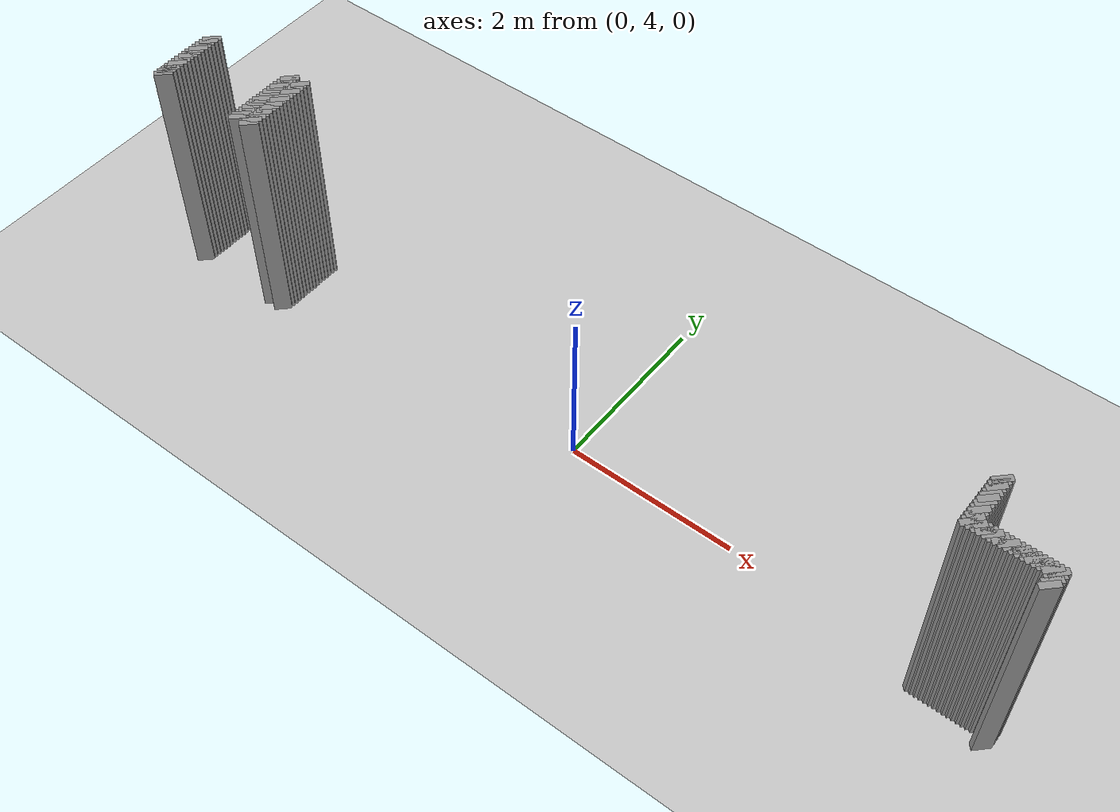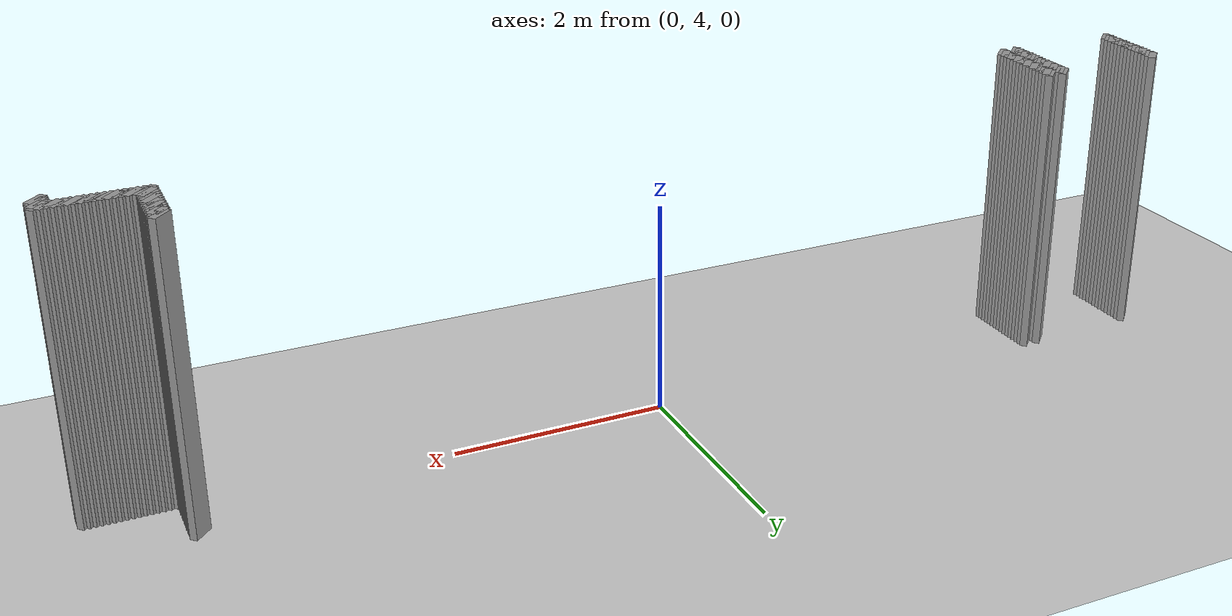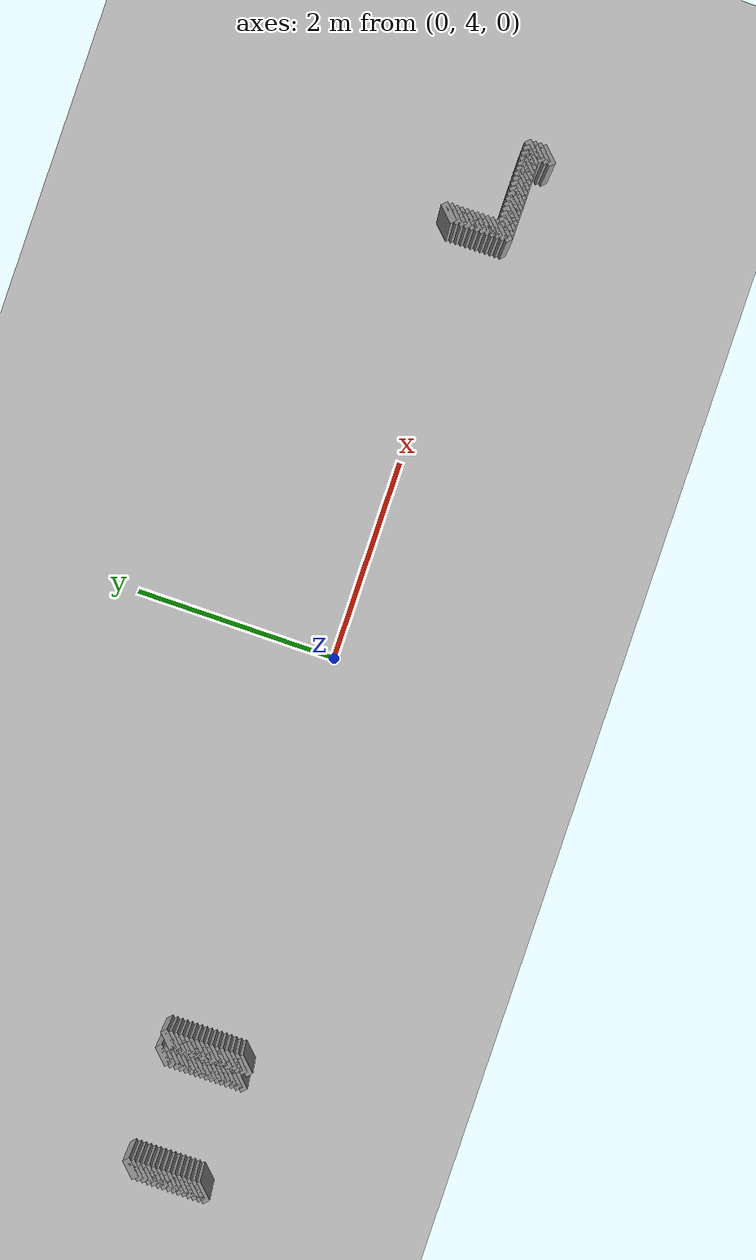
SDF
<sdf version="1.5">
 <world name="default">
  <include><uri>model://ground_plane</uri></include>
  <include><uri>model://sun</uri></include>
  <model name="grey_wall_237">
   <static>1</static>
   <link name="link">
    <pose>-4.025 4.325  1.4 0 0 -0.785398163397</pose>
    <collision name="collision"><geometry><box><size>0.0707106781187 .2  2.8</size></box></geometry></collision>
    <visual name="visual">
     <cast_shadows>0</cast_shadows>
     <geometry><box><size>0.0707106781187 .2  2.8</size></box></geometry>
     <material>
      <script>
       <uri>model://grey_wall/materials/scripts</uri>
       <uri>model://grey_wall/materials/textures</uri>
       <name>vrc/grey_wall</name>
      </script>
     </material>
    </visual>
   </link>
  </model>
  <model name="grey_wall_238">
   <static>1</static>
   <link name="link">
    <pose>-3.875 4.325  1.4 0 0 -0.785398163397</pose>
    <collision name="collision"><geometry><box><size>0.0707106781187 .2  2.8</size></box></geometry></collision>
    <visual name="visual">
     <cast_shadows>0</cast_shadows>
     <geometry><box><size>0.0707106781187 .2  2.8</size></box></geometry>
     <material>
      <script>
       <uri>model://grey_wall/materials/scripts</uri>
       <uri>model://grey_wall/materials/textures</uri>
       <name>vrc/grey_wall</name>
      </script>
     </material>
    </visual>
   </link>
  </model>
  <model name="grey_wall_239">
   <static>1</static>
   <link name="link">
    <pose>4.275 4.325  1.4 0 0 -0.785398163397</pose>
    <collision name="collision"><geometry><box><size>0.0707106781187 .2  2.8</size></box></geometry></collision>
    <visual name="visual">
     <cast_shadows>0</cast_shadows>
     <geometry><box><size>0.0707106781187 .2  2.8</size></box></geometry>
     <material>
      <script>
       <uri>model://grey_wall/materials/scripts</uri>
       <uri>model://grey_wall/materials/textures</uri>
       <name>vrc/grey_wall</name>
      </script>
     </material>
    </visual>
   </link>
  </model>
  <model name="grey_wall_240">
   <static>1</static>
   <link name="link">
    <pose>-5.125 4.275  1.4 0 0 -0.785398163397</pose>
    <collision name="collision"><geometry><box><size>0.0707106781187 .2  2.8</size></box></geometry></collision>
    <visual name="visual">
     <cast_shadows>0</cast_shadows>
     <geometry><box><size>0.0707106781187 .2  2.8</size></box></geometry>
     <material>
      <script>
       <uri>model://grey_wall/materials/scripts</uri>
       <uri>model://grey_wall/materials/textures</uri>
       <name>vrc/grey_wall</name>
      </script>
     </material>
    </visual>
   </link>
  </model>
  <model name="grey_wall_241">
   <static>1</static>
   <link name="link">
    <pose>-4.025 4.275  1.4 0 0 -0.785398163397</pose>
    <collision name="collision"><geometry><box><size>0.0707106781187 .2  2.8</size></box></geometry></collision>
    <visual name="visual">
     <cast_shadows>0</cast_shadows>
     <geometry><box><size>0.0707106781187 .2  2.8</size></box></geometry>
     <material>
      <script>
       <uri>model://grey_wall/materials/scripts</uri>
       <uri>model://grey_wall/materials/textures</uri>
       <name>vrc/grey_wall</name>
      </script>
     </material>
    </visual>
   </link>
  </model>
  <model name="grey_wall_242">
   <static>1</static>
   <link name="link">
    <pose>-3.875 4.275  1.4 0 0 -0.785398163397</pose>
    <collision name="collision"><geometry><box><size>0.0707106781187 .2  2.8</size></box></geometry></collision>
    <visual name="visual">
     <cast_shadows>0</cast_shadows>
     <geometry><box><size>0.0707106781187 .2  2.8</size></box></geometry>
     <material>
      <script>
       <uri>model://grey_wall/materials/scripts</uri>
       <uri>model://grey_wall/materials/textures</uri>
       <name>vrc/grey_wall</name>
      </script>
     </material>
    </visual>
   </link>
  </model>
  <model name="grey_wall_243">
   <static>1</static>
   <link name="link">
    <pose>4.275 4.275  1.4 0 0 -0.785398163397</pose>
    <collision name="collision"><geometry><box><size>0.0707106781187 .2  2.8</size></box></geometry></collision>
    <visual name="visual">
     <cast_shadows>0</cast_shadows>
     <geometry><box><size>0.0707106781187 .2  2.8</size></box></geometry>
     <material>
      <script>
       <uri>model://grey_wall/materials/scripts</uri>
       <uri>model://grey_wall/materials/textures</uri>
       <name>vrc/grey_wall</name>
      </script>
     </material>
    </visual>
   </link>
  </model>
  <model name="grey_wall_244">
   <static>1</static>
   <link name="link">
    <pose>-5.125 4.225  1.4 0 0 -0.785398163397</pose>
    <collision name="collision"><geometry><box><size>0.0707106781187 .2  2.8</size></box></geometry></collision>
    <visual name="visual">
     <cast_shadows>0</cast_shadows>
     <geometry><box><size>0.0707106781187 .2  2.8</size></box></geometry>
     <material>
      <script>
       <uri>model://grey_wall/materials/scripts</uri>
       <uri>model://grey_wall/materials/textures</uri>
       <name>vrc/grey_wall</name>
      </script>
     </material>
    </visual>
   </link>
  </model>
  <model name="grey_wall_245">
   <static>1</static>
   <link name="link">
    <pose>-4.025 4.225  1.4 0 0 -0.785398163397</pose>
    <collision name="collision"><geometry><box><size>0.0707106781187 .2  2.8</size></box></geometry></collision>
    <visual name="visual">
     <cast_shadows>0</cast_shadows>
     <geometry><box><size>0.0707106781187 .2  2.8</size></box></geometry>
     <material>
      <script>
       <uri>model://grey_wall/materials/scripts</uri>
       <uri>model://grey_wall/materials/textures</uri>
       <name>vrc/grey_wall</name>
      </script>
     </material>
    </visual>
   </link>
  </model>
  <model name="grey_wall_246">
   <static>1</static>
   <link name="link">
    <pose>-3.875 4.225  1.4 0 0 -0.785398163397</pose>
    <collision name="collision"><geometry><box><size>0.0707106781187 .2  2.8</size></box></geometry></collision>
    <visual name="visual">
     <cast_shadows>0</cast_shadows>
     <geometry><box><size>0.0707106781187 .2  2.8</size></box></geometry>
     <material>
      <script>
       <uri>model://grey_wall/materials/scripts</uri>
       <uri>model://grey_wall/materials/textures</uri>
       <name>vrc/grey_wall</name>
      </script>
     </material>
    </visual>
   </link>
  </model>
  <model name="grey_wall_247">
   <static>1</static>
   <link name="link">
    <pose>4.275 4.225  1.4 0 0 -0.785398163397</pose>
    <collision name="collision"><geometry><box><size>0.0707106781187 .2  2.8</size></box></geometry></collision>
    <visual name="visual">
     <cast_shadows>0</cast_shadows>
     <geometry><box><size>0.0707106781187 .2  2.8</size></box></geometry>
     <material>
      <script>
       <uri>model://grey_wall/materials/scripts</uri>
       <uri>model://grey_wall/materials/textures</uri>
       <name>vrc/grey_wall</name>
      </script>
     </material>
    </visual>
   </link>
  </model>
  <model name="grey_wall_248">
   <static>1</static>
   <link name="link">
    <pose>-5.125 4.175  1.4 0 0 -0.785398163397</pose>
    <collision name="collision"><geometry><box><size>0.0707106781187 .2  2.8</size></box></geometry></collision>
    <visual name="visual">
     <cast_shadows>0</cast_shadows>
     <geometry><box><size>0.0707106781187 .2  2.8</size></box></geometry>
     <material>
      <script>
       <uri>model://grey_wall/materials/scripts</uri>
       <uri>model://grey_wall/materials/textures</uri>
       <name>vrc/grey_wall</name>
      </script>
     </material>
    </visual>
   </link>
  </model>
  <model name="grey_wall_249">
   <static>1</static>
   <link name="link">
    <pose>-4.025 4.175  1.4 0 0 -0.785398163397</pose>
    <collision name="collision"><geometry><box><size>0.0707106781187 .2  2.8</size></box></geometry></collision>
    <visual name="visual">
     <cast_shadows>0</cast_shadows>
     <geometry><box><size>0.0707106781187 .2  2.8</size></box></geometry>
     <material>
      <script>
       <uri>model://grey_wall/materials/scripts</uri>
       <uri>model://grey_wall/materials/textures</uri>
       <name>vrc/grey_wall</name>
      </script>
     </material>
    </visual>
   </link>
  </model>
  <model name="grey_wall_250">
   <static>1</static>
   <link name="link">
    <pose>-3.875 4.175  1.4 0 0 -0.785398163397</pose>
    <collision name="collision"><geometry><box><size>0.0707106781187 .2  2.8</size></box></geometry></collision>
    <visual name="visual">
     <cast_shadows>0</cast_shadows>
     <geometry><box><size>0.0707106781187 .2  2.8</size></box></geometry>
     <material>
      <script>
       <uri>model://grey_wall/materials/scripts</uri>
       <uri>model://grey_wall/materials/textures</uri>
       <name>vrc/grey_wall</name>
      </script>
     </material>
    </visual>
   </link>
  </model>
  <model name="grey_wall_251">
   <static>1</static>
   <link name="link">
    <pose>4.275 4.175  1.4 0 0 -0.785398163397</pose>
    <collision name="collision"><geometry><box><size>0.0707106781187 .2  2.8</size></box></geometry></collision>
    <visual name="visual">
     <cast_shadows>0</cast_shadows>
     <geometry><box><size>0.0707106781187 .2  2.8</size></box></geometry>
     <material>
      <script>
       <uri>model://grey_wall/materials/scripts</uri>
       <uri>model://grey_wall/materials/textures</uri>
       <name>vrc/grey_wall</name>
      </script>
     </material>
    </visual>
   </link>
  </model>
  <model name="grey_wall_252">
   <static>1</static>
   <link name="link">
    <pose>-5.125 4.125  1.4 0 0 -0.785398163397</pose>
    <collision name="collision"><geometry><box><size>0.0707106781187 .2  2.8</size></box></geometry></collision>
    <visual name="visual">
     <cast_shadows>0</cast_shadows>
     <geometry><box><size>0.0707106781187 .2  2.8</size></box></geometry>
     <material>
      <script>
       <uri>model://grey_wall/materials/scripts</uri>
       <uri>model://grey_wall/materials/textures</uri>
       <name>vrc/grey_wall</name>
      </script>
     </material>
    </visual>
   </link>
  </model>
  <model name="grey_wall_253">
   <static>1</static>
   <link name="link">
    <pose>-4.025 4.125  1.4 0 0 -0.785398163397</pose>
    <collision name="collision"><geometry><box><size>0.0707106781187 .2  2.8</size></box></geometry></collision>
    <visual name="visual">
     <cast_shadows>0</cast_shadows>
     <geometry><box><size>0.0707106781187 .2  2.8</size></box></geometry>
     <material>
      <script>
       <uri>model://grey_wall/materials/scripts</uri>
       <uri>model://grey_wall/materials/textures</uri>
       <name>vrc/grey_wall</name>
      </script>
     </material>
    </visual>
   </link>
  </model>
  <model name="grey_wall_254">
   <static>1</static>
   <link name="link">
    <pose>-3.875 4.125  1.4 0 0 -0.785398163397</pose>
    <collision name="collision"><geometry><box><size>0.0707106781187 .2  2.8</size></box></geometry></collision>
    <visual name="visual">
     <cast_shadows>0</cast_shadows>
     <geometry><box><size>0.0707106781187 .2  2.8</size></box></geometry>
     <material>
      <script>
       <uri>model://grey_wall/materials/scripts</uri>
       <uri>model://grey_wall/materials/textures</uri>
       <name>vrc/grey_wall</name>
      </script>
     </material>
    </visual>
   </link>
  </model>
  <model name="grey_wall_255">
   <static>1</static>
   <link name="link">
    <pose>4.275 4.125  1.4 0 0 -0.785398163397</pose>
    <collision name="collision"><geometry><box><size>0.0707106781187 .2  2.8</size></box></geometry></collision>
    <visual name="visual">
     <cast_shadows>0</cast_shadows>
     <geometry><box><size>0.0707106781187 .2  2.8</size></box></geometry>
     <material>
      <script>
       <uri>model://grey_wall/materials/scripts</uri>
       <uri>model://grey_wall/materials/textures</uri>
       <name>vrc/grey_wall</name>
      </script>
     </material>
    </visual>
   </link>
  </model>
  <model name="grey_wall_256">
   <static>1</static>
   <link name="link">
    <pose>-5.125 4.075  1.4 0 0 -0.785398163397</pose>
    <collision name="collision"><geometry><box><size>0.0707106781187 .2  2.8</size></box></geometry></collision>
    <visual name="visual">
     <cast_shadows>0</cast_shadows>
     <geometry><box><size>0.0707106781187 .2  2.8</size></box></geometry>
     <material>
      <script>
       <uri>model://grey_wall/materials/scripts</uri>
       <uri>model://grey_wall/materials/textures</uri>
       <name>vrc/grey_wall</name>
      </script>
     </material>
    </visual>
   </link>
  </model>
  <model name="grey_wall_257">
   <static>1</static>
   <link name="link">
    <pose>-4.025 4.075  1.4 0 0 -0.785398163397</pose>
    <collision name="collision"><geometry><box><size>0.0707106781187 .2  2.8</size></box></geometry></collision>
    <visual name="visual">
     <cast_shadows>0</cast_shadows>
     <geometry><box><size>0.0707106781187 .2  2.8</size></box></geometry>
     <material>
      <script>
       <uri>model://grey_wall/materials/scripts</uri>
       <uri>model://grey_wall/materials/textures</uri>
       <name>vrc/grey_wall</name>
      </script>
     </material>
    </visual>
   </link>
  </model>
  <model name="grey_wall_258">
   <static>1</static>
   <link name="link">
    <pose>-3.875 4.075  1.4 0 0 -0.785398163397</pose>
    <collision name="collision"><geometry><box><size>0.0707106781187 .2  2.8</size></box></geometry></collision>
    <visual name="visual">
     <cast_shadows>0</cast_shadows>
     <geometry><box><size>0.0707106781187 .2  2.8</size></box></geometry>
     <material>
      <script>
       <uri>model://grey_wall/materials/scripts</uri>
       <uri>model://grey_wall/materials/textures</uri>
       <name>vrc/grey_wall</name>
      </script>
     </material>
    </visual>
   </link>
  </model>
  <model name="grey_wall_259">
   <static>1</static>
   <link name="link">
    <pose>4.275 4.075  1.4 0 0 -0.785398163397</pose>
    <collision name="collision"><geometry><box><size>0.0707106781187 .2  2.8</size></box></geometry></collision>
    <visual name="visual">
     <cast_shadows>0</cast_shadows>
     <geometry><box><size>0.0707106781187 .2  2.8</size></box></geometry>
     <material>
      <script>
       <uri>model://grey_wall/materials/scripts</uri>
       <uri>model://grey_wall/materials/textures</uri>
       <name>vrc/grey_wall</name>
      </script>
     </material>
    </visual>
   </link>
  </model>
  <model name="grey_wall_260">
   <static>1</static>
   <link name="link">
    <pose>-5.125 4.025  1.4 0 0 -0.785398163397</pose>
    <collision name="collision"><geometry><box><size>0.0707106781187 .2  2.8</size></box></geometry></collision>
    <visual name="visual">
     <cast_shadows>0</cast_shadows>
     <geometry><box><size>0.0707106781187 .2  2.8</size></box></geometry>
     <material>
      <script>
       <uri>model://grey_wall/materials/scripts</uri>
       <uri>model://grey_wall/materials/textures</uri>
       <name>vrc/grey_wall</name>
      </script>
     </material>
    </visual>
   </link>
  </model>
  <model name="grey_wall_261">
   <static>1</static>
   <link name="link">
    <pose>-4.025 4.025  1.4 0 0 -0.785398163397</pose>
    <collision name="collision"><geometry><box><size>0.0707106781187 .2  2.8</size></box></geometry></collision>
    <visual name="visual">
     <cast_shadows>0</cast_shadows>
     <geometry><box><size>0.0707106781187 .2  2.8</size></box></geometry>
     <material>
      <script>
       <uri>model://grey_wall/materials/scripts</uri>
       <uri>model://grey_wall/materials/textures</uri>
       <name>vrc/grey_wall</name>
      </script>
     </material>
    </visual>
   </link>
  </model>
  <model name="grey_wall_262">
   <static>1</static>
   <link name="link">
    <pose>-3.875 4.025  1.4 0 0 -0.785398163397</pose>
    <collision name="collision"><geometry><box><size>0.0707106781187 .2  2.8</size></box></geometry></collision>
    <visual name="visual">
     <cast_shadows>0</cast_shadows>
     <geometry><box><size>0.0707106781187 .2  2.8</size></box></geometry>
     <material>
      <script>
       <uri>model://grey_wall/materials/scripts</uri>
       <uri>model://grey_wall/materials/textures</uri>
       <name>vrc/grey_wall</name>
      </script>
     </material>
    </visual>
   </link>
  </model>
  <model name="grey_wall_263">
   <static>1</static>
   <link name="link">
    <pose>4.275 4.025  1.4 0 0 -0.785398163397</pose>
    <collision name="collision"><geometry><box><size>0.0707106781187 .2  2.8</size></box></geometry></collision>
    <visual name="visual">
     <cast_shadows>0</cast_shadows>
     <geometry><box><size>0.0707106781187 .2  2.8</size></box></geometry>
     <material>
      <script>
       <uri>model://grey_wall/materials/scripts</uri>
       <uri>model://grey_wall/materials/textures</uri>
       <name>vrc/grey_wall</name>
      </script>
     </material>
    </visual>
   </link>
  </model>
  <model name="grey_wall_264">
   <static>1</static>
   <link name="link">
    <pose>-5.125 3.975  1.4 0 0 -0.785398163397</pose>
    <collision name="collision"><geometry><box><size>0.0707106781187 .2  2.8</size></box></geometry></collision>
    <visual name="visual">
     <cast_shadows>0</cast_shadows>
     <geometry><box><size>0.0707106781187 .2  2.8</size></box></geometry>
     <material>
      <script>
       <uri>model://grey_wall/materials/scripts</uri>
       <uri>model://grey_wall/materials/textures</uri>
       <name>vrc/grey_wall</name>
      </script>
     </material>
    </visual>
   </link>
  </model>
  <model name="grey_wall_265">
   <static>1</static>
   <link name="link">
    <pose>-4.025 3.975  1.4 0 0 -0.785398163397</pose>
    <collision name="collision"><geometry><box><size>0.0707106781187 .2  2.8</size></box></geometry></collision>
    <visual name="visual">
     <cast_shadows>0</cast_shadows>
     <geometry><box><size>0.0707106781187 .2  2.8</size></box></geometry>
     <material>
      <script>
       <uri>model://grey_wall/materials/scripts</uri>
       <uri>model://grey_wall/materials/textures</uri>
       <name>vrc/grey_wall</name>
      </script>
     </material>
    </visual>
   </link>
  </model>
  <model name="grey_wall_266">
   <static>1</static>
   <link name="link">
    <pose>-3.875 3.975  1.4 0 0 -0.785398163397</pose>
    <collision name="collision"><geometry><box><size>0.0707106781187 .2  2.8</size></box></geometry></collision>
    <visual name="visual">
     <cast_shadows>0</cast_shadows>
     <geometry><box><size>0.0707106781187 .2  2.8</size></box></geometry>
     <material>
      <script>
       <uri>model://grey_wall/materials/scripts</uri>
       <uri>model://grey_wall/materials/textures</uri>
       <name>vrc/grey_wall</name>
      </script>
     </material>
    </visual>
   </link>
  </model>
  <model name="grey_wall_267">
   <static>1</static>
   <link name="link">
    <pose>4.275 3.975  1.4 0 0 -0.785398163397</pose>
    <collision name="collision"><geometry><box><size>0.0707106781187 .2  2.8</size></box></geometry></collision>
    <visual name="visual">
     <cast_shadows>0</cast_shadows>
     <geometry><box><size>0.0707106781187 .2  2.8</size></box></geometry>
     <material>
      <script>
       <uri>model://grey_wall/materials/scripts</uri>
       <uri>model://grey_wall/materials/textures</uri>
       <name>vrc/grey_wall</name>
      </script>
     </material>
    </visual>
   </link>
  </model>
  <model name="grey_wall_268">
   <static>1</static>
   <link name="link">
    <pose>-5.125 3.925  1.4 0 0 -0.785398163397</pose>
    <collision name="collision"><geometry><box><size>0.0707106781187 .2  2.8</size></box></geometry></collision>
    <visual name="visual">
     <cast_shadows>0</cast_shadows>
     <geometry><box><size>0.0707106781187 .2  2.8</size></box></geometry>
     <material>
      <script>
       <uri>model://grey_wall/materials/scripts</uri>
       <uri>model://grey_wall/materials/textures</uri>
       <name>vrc/grey_wall</name>
      </script>
     </material>
    </visual>
   </link>
  </model>
  <model name="grey_wall_269">
   <static>1</static>
   <link name="link">
    <pose>-4.025 3.925  1.4 0 0 -0.785398163397</pose>
    <collision name="collision"><geometry><box><size>0.0707106781187 .2  2.8</size></box></geometry></collision>
    <visual name="visual">
     <cast_shadows>0</cast_shadows>
     <geometry><box><size>0.0707106781187 .2  2.8</size></box></geometry>
     <material>
      <script>
       <uri>model://grey_wall/materials/scripts</uri>
       <uri>model://grey_wall/materials/textures</uri>
       <name>vrc/grey_wall</name>
      </script>
     </material>
    </visual>
   </link>
  </model>
  <model name="grey_wall_270">
   <static>1</static>
   <link name="link">
    <pose>-3.875 3.925  1.4 0 0 -0.785398163397</pose>
    <collision name="collision"><geometry><box><size>0.0707106781187 .2  2.8</size></box></geometry></collision>
    <visual name="visual">
     <cast_shadows>0</cast_shadows>
     <geometry><box><size>0.0707106781187 .2  2.8</size></box></geometry>
     <material>
      <script>
       <uri>model://grey_wall/materials/scripts</uri>
       <uri>model://grey_wall/materials/textures</uri>
       <name>vrc/grey_wall</name>
      </script>
     </material>
    </visual>
   </link>
  </model>
  <model name="grey_wall_271">
   <static>1</static>
   <link name="link">
    <pose>4.275 3.925  1.4 0 0 -0.785398163397</pose>
    <collision name="collision"><geometry><box><size>0.0707106781187 .2  2.8</size></box></geometry></collision>
    <visual name="visual">
     <cast_shadows>0</cast_shadows>
     <geometry><box><size>0.0707106781187 .2  2.8</size></box></geometry>
     <material>
      <script>
       <uri>model://grey_wall/materials/scripts</uri>
       <uri>model://grey_wall/materials/textures</uri>
       <name>vrc/grey_wall</name>
      </script>
     </material>
    </visual>
   </link>
  </model>
  <model name="grey_wall_272">
   <static>1</static>
   <link name="link">
    <pose>-5.125 3.875  1.4 0 0 -0.785398163397</pose>
    <collision name="collision"><geometry><box><size>0.0707106781187 .2  2.8</size></box></geometry></collision>
    <visual name="visual">
     <cast_shadows>0</cast_shadows>
     <geometry><box><size>0.0707106781187 .2  2.8</size></box></geometry>
     <material>
      <script>
       <uri>model://grey_wall/materials/scripts</uri>
       <uri>model://grey_wall/materials/textures</uri>
       <name>vrc/grey_wall</name>
      </script>
     </material>
    </visual>
   </link>
  </model>
  <model name="grey_wall_273">
   <static>1</static>
   <link name="link">
    <pose>-4.025 3.875  1.4 0 0 -0.785398163397</pose>
    <collision name="collision"><geometry><box><size>0.0707106781187 .2  2.8</size></box></geometry></collision>
    <visual name="visual">
     <cast_shadows>0</cast_shadows>
     <geometry><box><size>0.0707106781187 .2  2.8</size></box></geometry>
     <material>
      <script>
       <uri>model://grey_wall/materials/scripts</uri>
       <uri>model://grey_wall/materials/textures</uri>
       <name>vrc/grey_wall</name>
      </script>
     </material>
    </visual>
   </link>
  </model>
  <model name="grey_wall_274">
   <static>1</static>
   <link name="link">
    <pose>-3.875 3.875  1.4 0 0 -0.785398163397</pose>
    <collision name="collision"><geometry><box><size>0.0707106781187 .2  2.8</size></box></geometry></collision>
    <visual name="visual">
     <cast_shadows>0</cast_shadows>
     <geometry><box><size>0.0707106781187 .2  2.8</size></box></geometry>
     <material>
      <script>
       <uri>model://grey_wall/materials/scripts</uri>
       <uri>model://grey_wall/materials/textures</uri>
       <name>vrc/grey_wall</name>
      </script>
     </material>
    </visual>
   </link>
  </model>
  <model name="grey_wall_275">
   <static>1</static>
   <link name="link">
    <pose>4.275 3.875  1.4 0 0 -0.785398163397</pose>
    <collision name="collision"><geometry><box><size>0.0707106781187 .2  2.8</size></box></geometry></collision>
    <visual name="visual">
     <cast_shadows>0</cast_shadows>
     <geometry><box><size>0.0707106781187 .2  2.8</size></box></geometry>
     <material>
      <script>
       <uri>model://grey_wall/materials/scripts</uri>
       <uri>model://grey_wall/materials/textures</uri>
       <name>vrc/grey_wall</name>
      </script>
     </material>
    </visual>
   </link>
  </model>
  <model name="grey_wall_276">
   <static>1</static>
   <link name="link">
    <pose>-5.125 3.825  1.4 0 0 -0.785398163397</pose>
    <collision name="collision"><geometry><box><size>0.0707106781187 .2  2.8</size></box></geometry></collision>
    <visual name="visual">
     <cast_shadows>0</cast_shadows>
     <geometry><box><size>0.0707106781187 .2  2.8</size></box></geometry>
     <material>
      <script>
       <uri>model://grey_wall/materials/scripts</uri>
       <uri>model://grey_wall/materials/textures</uri>
       <name>vrc/grey_wall</name>
      </script>
     </material>
    </visual>
   </link>
  </model>
  <model name="grey_wall_277">
   <static>1</static>
   <link name="link">
    <pose>-4.025 3.825  1.4 0 0 -0.785398163397</pose>
    <collision name="collision"><geometry><box><size>0.0707106781187 .2  2.8</size></box></geometry></collision>
    <visual name="visual">
     <cast_shadows>0</cast_shadows>
     <geometry><box><size>0.0707106781187 .2  2.8</size></box></geometry>
     <material>
      <script>
       <uri>model://grey_wall/materials/scripts</uri>
       <uri>model://grey_wall/materials/textures</uri>
       <name>vrc/grey_wall</name>
      </script>
     </material>
    </visual>
   </link>
  </model>
  <model name="grey_wall_278">
   <static>1</static>
   <link name="link">
    <pose>-3.875 3.825  1.4 0 0 -0.785398163397</pose>
    <collision name="collision"><geometry><box><size>0.0707106781187 .2  2.8</size></box></geometry></collision>
    <visual name="visual">
     <cast_shadows>0</cast_shadows>
     <geometry><box><size>0.0707106781187 .2  2.8</size></box></geometry>
     <material>
      <script>
       <uri>model://grey_wall/materials/scripts</uri>
       <uri>model://grey_wall/materials/textures</uri>
       <name>vrc/grey_wall</name>
      </script>
     </material>
    </visual>
   </link>
  </model>
  <model name="grey_wall_279">
   <static>1</static>
   <link name="link">
    <pose>4.275 3.825  1.4 0 0 -0.785398163397</pose>
    <collision name="collision"><geometry><box><size>0.0707106781187 .2  2.8</size></box></geometry></collision>
    <visual name="visual">
     <cast_shadows>0</cast_shadows>
     <geometry><box><size>0.0707106781187 .2  2.8</size></box></geometry>
     <material>
      <script>
       <uri>model://grey_wall/materials/scripts</uri>
       <uri>model://grey_wall/materials/textures</uri>
       <name>vrc/grey_wall</name>
      </script>
     </material>
    </visual>
   </link>
  </model>
  <model name="grey_wall_280">
   <static>1</static>
   <link name="link">
    <pose>-5.125 3.775  1.4 0 0 -0.785398163397</pose>
    <collision name="collision"><geometry><box><size>0.0707106781187 .2  2.8</size></box></geometry></collision>
    <visual name="visual">
     <cast_shadows>0</cast_shadows>
     <geometry><box><size>0.0707106781187 .2  2.8</size></box></geometry>
     <material>
      <script>
       <uri>model://grey_wall/materials/scripts</uri>
       <uri>model://grey_wall/materials/textures</uri>
       <name>vrc/grey_wall</name>
      </script>
     </material>
    </visual>
   </link>
  </model>
  <model name="grey_wall_281">
   <static>1</static>
   <link name="link">
    <pose>-4.025 3.775  1.4 0 0 -0.785398163397</pose>
    <collision name="collision"><geometry><box><size>0.0707106781187 .2  2.8</size></box></geometry></collision>
    <visual name="visual">
     <cast_shadows>0</cast_shadows>
     <geometry><box><size>0.0707106781187 .2  2.8</size></box></geometry>
     <material>
      <script>
       <uri>model://grey_wall/materials/scripts</uri>
       <uri>model://grey_wall/materials/textures</uri>
       <name>vrc/grey_wall</name>
      </script>
     </material>
    </visual>
   </link>
  </model>
  <model name="grey_wall_282">
   <static>1</static>
   <link name="link">
    <pose>-3.875 3.775  1.4 0 0 -0.785398163397</pose>
    <collision name="collision"><geometry><box><size>0.0707106781187 .2  2.8</size></box></geometry></collision>
    <visual name="visual">
     <cast_shadows>0</cast_shadows>
     <geometry><box><size>0.0707106781187 .2  2.8</size></box></geometry>
     <material>
      <script>
       <uri>model://grey_wall/materials/scripts</uri>
       <uri>model://grey_wall/materials/textures</uri>
       <name>vrc/grey_wall</name>
      </script>
     </material>
    </visual>
   </link>
  </model>
  <model name="grey_wall_283">
   <static>1</static>
   <link name="link">
    <pose>4.275 3.775  1.4 0 0 -0.785398163397</pose>
    <collision name="collision"><geometry><box><size>0.0707106781187 .2  2.8</size></box></geometry></collision>
    <visual name="visual">
     <cast_shadows>0</cast_shadows>
     <geometry><box><size>0.0707106781187 .2  2.8</size></box></geometry>
     <material>
      <script>
       <uri>model://grey_wall/materials/scripts</uri>
       <uri>model://grey_wall/materials/textures</uri>
       <name>vrc/grey_wall</name>
      </script>
     </material>
    </visual>
   </link>
  </model>
  <model name="grey_wall_284">
   <static>1</static>
   <link name="link">
    <pose>4.325 3.775  1.4 0 0 -0.785398163397</pose>
    <collision name="collision"><geometry><box><size>0.0707106781187 .2  2.8</size></box></geometry></collision>
    <visual name="visual">
     <cast_shadows>0</cast_shadows>
     <geometry><box><size>0.0707106781187 .2  2.8</size></box></geometry>
     <material>
      <script>
       <uri>model://grey_wall/materials/scripts</uri>
       <uri>model://grey_wall/materials/textures</uri>
       <name>vrc/grey_wall</name>
      </script>
     </material>
    </visual>
   </link>
  </model>
  <model name="grey_wall_285">
   <static>1</static>
   <link name="link">
    <pose>4.375 3.775  1.4 0 0 -0.785398163397</pose>
    <collision name="collision"><geometry><box><size>0.0707106781187 .2  2.8</size></box></geometry></collision>
    <visual name="visual">
     <cast_shadows>0</cast_shadows>
     <geometry><box><size>0.0707106781187 .2  2.8</size></box></geometry>
     <material>
      <script>
       <uri>model://grey_wall/materials/scripts</uri>
       <uri>model://grey_wall/materials/textures</uri>
       <name>vrc/grey_wall</name>
      </script>
     </material>
    </visual>
   </link>
  </model>
  <model name="grey_wall_286">
   <static>1</static>
   <link name="link">
    <pose>4.425 3.775  1.4 0 0 -0.785398163397</pose>
    <collision name="collision"><geometry><box><size>0.0707106781187 .2  2.8</size></box></geometry></collision>
    <visual name="visual">
     <cast_shadows>0</cast_shadows>
     <geometry><box><size>0.0707106781187 .2  2.8</size></box></geometry>
     <material>
      <script>
       <uri>model://grey_wall/materials/scripts</uri>
       <uri>model://grey_wall/materials/textures</uri>
       <name>vrc/grey_wall</name>
      </script>
     </material>
    </visual>
   </link>
  </model>
  <model name="grey_wall_287">
   <static>1</static>
   <link name="link">
    <pose>4.475 3.775  1.4 0 0 -0.785398163397</pose>
    <collision name="collision"><geometry><box><size>0.0707106781187 .2  2.8</size></box></geometry></collision>
    <visual name="visual">
     <cast_shadows>0</cast_shadows>
     <geometry><box><size>0.0707106781187 .2  2.8</size></box></geometry>
     <material>
      <script>
       <uri>model://grey_wall/materials/scripts</uri>
       <uri>model://grey_wall/materials/textures</uri>
       <name>vrc/grey_wall</name>
      </script>
     </material>
    </visual>
   </link>
  </model>
  <model name="grey_wall_288">
   <static>1</static>
   <link name="link">
    <pose>4.525 3.775  1.4 0 0 -0.785398163397</pose>
    <collision name="collision"><geometry><box><size>0.0707106781187 .2  2.8</size></box></geometry></collision>
    <visual name="visual">
     <cast_shadows>0</cast_shadows>
     <geometry><box><size>0.0707106781187 .2  2.8</size></box></geometry>
     <material>
      <script>
       <uri>model://grey_wall/materials/scripts</uri>
       <uri>model://grey_wall/materials/textures</uri>
       <name>vrc/grey_wall</name>
      </script>
     </material>
    </visual>
   </link>
  </model>
  <model name="grey_wall_289">
   <static>1</static>
   <link name="link">
    <pose>4.575 3.775  1.4 0 0 -0.785398163397</pose>
    <collision name="collision"><geometry><box><size>0.0707106781187 .2  2.8</size></box></geometry></collision>
    <visual name="visual">
     <cast_shadows>0</cast_shadows>
     <geometry><box><size>0.0707106781187 .2  2.8</size></box></geometry>
     <material>
      <script>
       <uri>model://grey_wall/materials/scripts</uri>
       <uri>model://grey_wall/materials/textures</uri>
       <name>vrc/grey_wall</name>
      </script>
     </material>
    </visual>
   </link>
  </model>
  <model name="grey_wall_290">
   <static>1</static>
   <link name="link">
    <pose>4.625 3.775  1.4 0 0 -0.785398163397</pose>
    <collision name="collision"><geometry><box><size>0.0707106781187 .2  2.8</size></box></geometry></collision>
    <visual name="visual">
     <cast_shadows>0</cast_shadows>
     <geometry><box><size>0.0707106781187 .2  2.8</size></box></geometry>
     <material>
      <script>
       <uri>model://grey_wall/materials/scripts</uri>
       <uri>model://grey_wall/materials/textures</uri>
       <name>vrc/grey_wall</name>
      </script>
     </material>
    </visual>
   </link>
  </model>
  <model name="grey_wall_291">
   <static>1</static>
   <link name="link">
    <pose>4.675 3.775  1.4 0 0 -0.785398163397</pose>
    <collision name="collision"><geometry><box><size>0.0707106781187 .2  2.8</size></box></geometry></collision>
    <visual name="visual">
     <cast_shadows>0</cast_shadows>
     <geometry><box><size>0.0707106781187 .2  2.8</size></box></geometry>
     <material>
      <script>
       <uri>model://grey_wall/materials/scripts</uri>
       <uri>model://grey_wall/materials/textures</uri>
       <name>vrc/grey_wall</name>
      </script>
     </material>
    </visual>
   </link>
  </model>
  <model name="grey_wall_292">
   <static>1</static>
   <link name="link">
    <pose>4.725 3.775  1.4 0 0 -0.785398163397</pose>
    <collision name="collision"><geometry><box><size>0.0707106781187 .2  2.8</size></box></geometry></collision>
    <visual name="visual">
     <cast_shadows>0</cast_shadows>
     <geometry><box><size>0.0707106781187 .2  2.8</size></box></geometry>
     <material>
      <script>
       <uri>model://grey_wall/materials/scripts</uri>
       <uri>model://grey_wall/materials/textures</uri>
       <name>vrc/grey_wall</name>
      </script>
     </material>
    </visual>
   </link>
  </model>
  <model name="grey_wall_293">
   <static>1</static>
   <link name="link">
    <pose>4.775 3.775  1.4 0 0 -0.785398163397</pose>
    <collision name="collision"><geometry><box><size>0.0707106781187 .2  2.8</size></box></geometry></collision>
    <visual name="visual">
     <cast_shadows>0</cast_shadows>
     <geometry><box><size>0.0707106781187 .2  2.8</size></box></geometry>
     <material>
      <script>
       <uri>model://grey_wall/materials/scripts</uri>
       <uri>model://grey_wall/materials/textures</uri>
       <name>vrc/grey_wall</name>
      </script>
     </material>
    </visual>
   </link>
  </model>
  <model name="grey_wall_294">
   <static>1</static>
   <link name="link">
    <pose>4.825 3.775  1.4 0 0 -0.785398163397</pose>
    <collision name="collision"><geometry><box><size>0.0707106781187 .2  2.8</size></box></geometry></collision>
    <visual name="visual">
     <cast_shadows>0</cast_shadows>
     <geometry><box><size>0.0707106781187 .2  2.8</size></box></geometry>
     <material>
      <script>
       <uri>model://grey_wall/materials/scripts</uri>
       <uri>model://grey_wall/materials/textures</uri>
       <name>vrc/grey_wall</name>
      </script>
     </material>
    </visual>
   </link>
  </model>
  <model name="grey_wall_295">
   <static>1</static>
   <link name="link">
    <pose>4.875 3.775  1.4 0 0 -0.785398163397</pose>
    <collision name="collision"><geometry><box><size>0.0707106781187 .2  2.8</size></box></geometry></collision>
    <visual name="visual">
     <cast_shadows>0</cast_shadows>
     <geometry><box><size>0.0707106781187 .2  2.8</size></box></geometry>
     <material>
      <script>
       <uri>model://grey_wall/materials/scripts</uri>
       <uri>model://grey_wall/materials/textures</uri>
       <name>vrc/grey_wall</name>
      </script>
     </material>
    </visual>
   </link>
  </model>
  <model name="grey_wall_296">
   <static>1</static>
   <link name="link">
    <pose>4.925 3.775  1.4 0 0 -0.785398163397</pose>
    <collision name="collision"><geometry><box><size>0.0707106781187 .2  2.8</size></box></geometry></collision>
    <visual name="visual">
     <cast_shadows>0</cast_shadows>
     <geometry><box><size>0.0707106781187 .2  2.8</size></box></geometry>
     <material>
      <script>
       <uri>model://grey_wall/materials/scripts</uri>
       <uri>model://grey_wall/materials/textures</uri>
       <name>vrc/grey_wall</name>
      </script>
     </material>
    </visual>
   </link>
  </model>
  <model name="grey_wall_297">
   <static>1</static>
   <link name="link">
    <pose>4.975 3.775  1.4 0 0 -0.785398163397</pose>
    <collision name="collision"><geometry><box><size>0.0707106781187 .2  2.8</size></box></geometry></collision>
    <visual name="visual">
     <cast_shadows>0</cast_shadows>
     <geometry><box><size>0.0707106781187 .2  2.8</size></box></geometry>
     <material>
      <script>
       <uri>model://grey_wall/materials/scripts</uri>
       <uri>model://grey_wall/materials/textures</uri>
       <name>vrc/grey_wall</name>
      </script>
     </material>
    </visual>
   </link>
  </model>
  <model name="grey_wall_298">
   <static>1</static>
   <link name="link">
    <pose>5.025 3.775  1.4 0 0 -0.785398163397</pose>
    <collision name="collision"><geometry><box><size>0.0707106781187 .2  2.8</size></box></geometry></collision>
    <visual name="visual">
     <cast_shadows>0</cast_shadows>
     <geometry><box><size>0.0707106781187 .2  2.8</size></box></geometry>
     <material>
      <script>
       <uri>model://grey_wall/materials/scripts</uri>
       <uri>model://grey_wall/materials/textures</uri>
       <name>vrc/grey_wall</name>
      </script>
     </material>
    </visual>
   </link>
  </model>
  <model name="grey_wall_299">
   <static>1</static>
   <link name="link">
    <pose>5.075 3.775  1.4 0 0 -0.785398163397</pose>
    <collision name="collision"><geometry><box><size>0.0707106781187 .2  2.8</size></box></geometry></collision>
    <visual name="visual">
     <cast_shadows>0</cast_shadows>
     <geometry><box><size>0.0707106781187 .2  2.8</size></box></geometry>
     <material>
      <script>
       <uri>model://grey_wall/materials/scripts</uri>
       <uri>model://grey_wall/materials/textures</uri>
       <name>vrc/grey_wall</name>
      </script>
     </material>
    </visual>
   </link>
  </model>
  <model name="grey_wall_300">
   <static>1</static>
   <link name="link">
    <pose>-5.125 3.725  1.4 0 0 -0.785398163397</pose>
    <collision name="collision"><geometry><box><size>0.0707106781187 .2  2.8</size></box></geometry></collision>
    <visual name="visual">
     <cast_shadows>0</cast_shadows>
     <geometry><box><size>0.0707106781187 .2  2.8</size></box></geometry>
     <material>
      <script>
       <uri>model://grey_wall/materials/scripts</uri>
       <uri>model://grey_wall/materials/textures</uri>
       <name>vrc/grey_wall</name>
      </script>
     </material>
    </visual>
   </link>
  </model>
  <model name="grey_wall_301">
   <static>1</static>
   <link name="link">
    <pose>-4.025 3.725  1.4 0 0 -0.785398163397</pose>
    <collision name="collision"><geometry><box><size>0.0707106781187 .2  2.8</size></box></geometry></collision>
    <visual name="visual">
     <cast_shadows>0</cast_shadows>
     <geometry><box><size>0.0707106781187 .2  2.8</size></box></geometry>
     <material>
      <script>
       <uri>model://grey_wall/materials/scripts</uri>
       <uri>model://grey_wall/materials/textures</uri>
       <name>vrc/grey_wall</name>
      </script>
     </material>
    </visual>
   </link>
  </model>
  <model name="grey_wall_302">
   <static>1</static>
   <link name="link">
    <pose>-3.875 3.725  1.4 0 0 -0.785398163397</pose>
    <collision name="collision"><geometry><box><size>0.0707106781187 .2  2.8</size></box></geometry></collision>
    <visual name="visual">
     <cast_shadows>0</cast_shadows>
     <geometry><box><size>0.0707106781187 .2  2.8</size></box></geometry>
     <material>
      <script>
       <uri>model://grey_wall/materials/scripts</uri>
       <uri>model://grey_wall/materials/textures</uri>
       <name>vrc/grey_wall</name>
      </script>
     </material>
    </visual>
   </link>
  </model>
  <model name="grey_wall_303">
   <static>1</static>
   <link name="link">
    <pose>5.075 3.725  1.4 0 0 -0.785398163397</pose>
    <collision name="collision"><geometry><box><size>0.0707106781187 .2  2.8</size></box></geometry></collision>
    <visual name="visual">
     <cast_shadows>0</cast_shadows>
     <geometry><box><size>0.0707106781187 .2  2.8</size></box></geometry>
     <material>
      <script>
       <uri>model://grey_wall/materials/scripts</uri>
       <uri>model://grey_wall/materials/textures</uri>
       <name>vrc/grey_wall</name>
      </script>
     </material>
    </visual>
   </link>
  </model>
  <model name="grey_wall_304">
   <static>1</static>
   <link name="link">
    <pose>-5.125 3.675  1.4 0 0 -0.785398163397</pose>
    <collision name="collision"><geometry><box><size>0.0707106781187 .2  2.8</size></box></geometry></collision>
    <visual name="visual">
     <cast_shadows>0</cast_shadows>
     <geometry><box><size>0.0707106781187 .2  2.8</size></box></geometry>
     <material>
      <script>
       <uri>model://grey_wall/materials/scripts</uri>
       <uri>model://grey_wall/materials/textures</uri>
       <name>vrc/grey_wall</name>
      </script>
     </material>
    </visual>
   </link>
  </model>
  <model name="grey_wall_305">
   <static>1</static>
   <link name="link">
    <pose>-4.025 3.675  1.4 0 0 -0.785398163397</pose>
    <collision name="collision"><geometry><box><size>0.0707106781187 .2  2.8</size></box></geometry></collision>
    <visual name="visual">
     <cast_shadows>0</cast_shadows>
     <geometry><box><size>0.0707106781187 .2  2.8</size></box></geometry>
     <material>
      <script>
       <uri>model://grey_wall/materials/scripts</uri>
       <uri>model://grey_wall/materials/textures</uri>
       <name>vrc/grey_wall</name>
      </script>
     </material>
    </visual>
   </link>
  </model>
  <model name="grey_wall_306">
   <static>1</static>
   <link name="link">
    <pose>-3.875 3.675  1.4 0 0 -0.785398163397</pose>
    <collision name="collision"><geometry><box><size>0.0707106781187 .2  2.8</size></box></geometry></collision>
    <visual name="visual">
     <cast_shadows>0</cast_shadows>
     <geometry><box><size>0.0707106781187 .2  2.8</size></box></geometry>
     <material>
      <script>
       <uri>model://grey_wall/materials/scripts</uri>
       <uri>model://grey_wall/materials/textures</uri>
       <name>vrc/grey_wall</name>
      </script>
     </material>
    </visual>
   </link>
  </model>
  <model name="grey_wall_307">
   <static>1</static>
   <link name="link">
    <pose>5.075 3.675  1.4 0 0 -0.785398163397</pose>
    <collision name="collision"><geometry><box><size>0.0707106781187 .2  2.8</size></box></geometry></collision>
    <visual name="visual">
     <cast_shadows>0</cast_shadows>
     <geometry><box><size>0.0707106781187 .2  2.8</size></box></geometry>
     <material>
      <script>
       <uri>model://grey_wall/materials/scripts</uri>
       <uri>model://grey_wall/materials/textures</uri>
       <name>vrc/grey_wall</name>
      </script>
     </material>
    </visual>
   </link>
  </model>
  <model name="grey_wall_308">
   <static>1</static>
   <link name="link">
    <pose>-5.125 3.625  1.4 0 0 -0.785398163397</pose>
    <collision name="collision"><geometry><box><size>0.0707106781187 .2  2.8</size></box></geometry></collision>
    <visual name="visual">
     <cast_shadows>0</cast_shadows>
     <geometry><box><size>0.0707106781187 .2  2.8</size></box></geometry>
     <material>
      <script>
       <uri>model://grey_wall/materials/scripts</uri>
       <uri>model://grey_wall/materials/textures</uri>
       <name>vrc/grey_wall</name>
      </script>
     </material>
    </visual>
   </link>
  </model>
  <model name="grey_wall_309">
   <static>1</static>
   <link name="link">
    <pose>-4.025 3.625  1.4 0 0 -0.785398163397</pose>
    <collision name="collision"><geometry><box><size>0.0707106781187 .2  2.8</size></box></geometry></collision>
    <visual name="visual">
     <cast_shadows>0</cast_shadows>
     <geometry><box><size>0.0707106781187 .2  2.8</size></box></geometry>
     <material>
      <script>
       <uri>model://grey_wall/materials/scripts</uri>
       <uri>model://grey_wall/materials/textures</uri>
       <name>vrc/grey_wall</name>
      </script>
     </material>
    </visual>
   </link>
  </model>
  <model name="grey_wall_310">
   <static>1</static>
   <link name="link">
    <pose>-3.875 3.625  1.4 0 0 -0.785398163397</pose>
    <collision name="collision"><geometry><box><size>0.0707106781187 .2  2.8</size></box></geometry></collision>
    <visual name="visual">
     <cast_shadows>0</cast_shadows>
     <geometry><box><size>0.0707106781187 .2  2.8</size></box></geometry>
     <material>
      <script>
       <uri>model://grey_wall/materials/scripts</uri>
       <uri>model://grey_wall/materials/textures</uri>
       <name>vrc/grey_wall</name>
      </script>
     </material>
    </visual>
   </link>
  </model>
  <model name="grey_wall_311">
   <static>1</static>
   <link name="link">
    <pose>5.075 3.625  1.4 0 0 -0.785398163397</pose>
    <collision name="collision"><geometry><box><size>0.0707106781187 .2  2.8</size></box></geometry></collision>
    <visual name="visual">
     <cast_shadows>0</cast_shadows>
     <geometry><box><size>0.0707106781187 .2  2.8</size></box></geometry>
     <material>
      <script>
       <uri>model://grey_wall/materials/scripts</uri>
       <uri>model://grey_wall/materials/textures</uri>
       <name>vrc/grey_wall</name>
      </script>
     </material>
    </visual>
   </link>
  </model>
  <model name="grey_wall_312">
   <static>1</static>
   <link name="link">
    <pose>-5.125 3.575  1.4 0 0 -0.785398163397</pose>
    <collision name="collision"><geometry><box><size>0.0707106781187 .2  2.8</size></box></geometry></collision>
    <visual name="visual">
     <cast_shadows>0</cast_shadows>
     <geometry><box><size>0.0707106781187 .2  2.8</size></box></geometry>
     <material>
      <script>
       <uri>model://grey_wall/materials/scripts</uri>
       <uri>model://grey_wall/materials/textures</uri>
       <name>vrc/grey_wall</name>
      </script>
     </material>
    </visual>
   </link>
  </model>
  <model name="grey_wall_313">
   <static>1</static>
   <link name="link">
    <pose>-4.025 3.575  1.4 0 0 -0.785398163397</pose>
    <collision name="collision"><geometry><box><size>0.0707106781187 .2  2.8</size></box></geometry></collision>
    <visual name="visual">
     <cast_shadows>0</cast_shadows>
     <geometry><box><size>0.0707106781187 .2  2.8</size></box></geometry>
     <material>
      <script>
       <uri>model://grey_wall/materials/scripts</uri>
       <uri>model://grey_wall/materials/textures</uri>
       <name>vrc/grey_wall</name>
      </script>
     </material>
    </visual>
   </link>
  </model>
  <model name="grey_wall_314">
   <static>1</static>
   <link name="link">
    <pose>-3.875 3.575  1.4 0 0 -0.785398163397</pose>
    <collision name="collision"><geometry><box><size>0.0707106781187 .2  2.8</size></box></geometry></collision>
    <visual name="visual">
     <cast_shadows>0</cast_shadows>
     <geometry><box><size>0.0707106781187 .2  2.8</size></box></geometry>
     <material>
      <script>
       <uri>model://grey_wall/materials/scripts</uri>
       <uri>model://grey_wall/materials/textures</uri>
       <name>vrc/grey_wall</name>
      </script>
     </material>
    </visual>
   </link>
  </model>
 </world>
</sdf>
